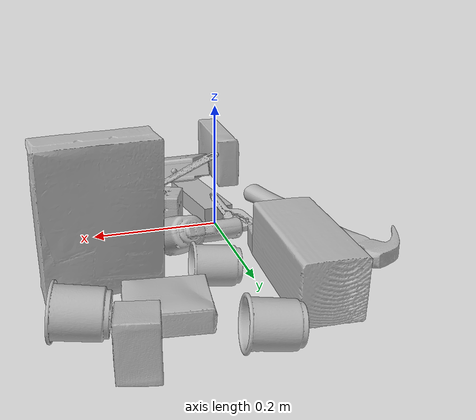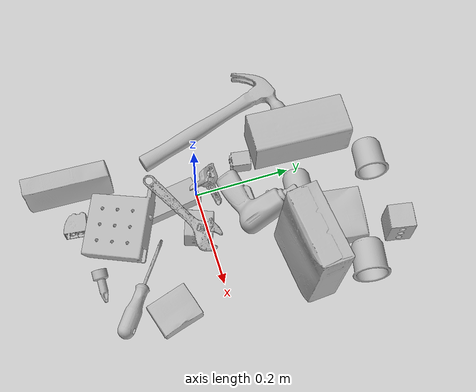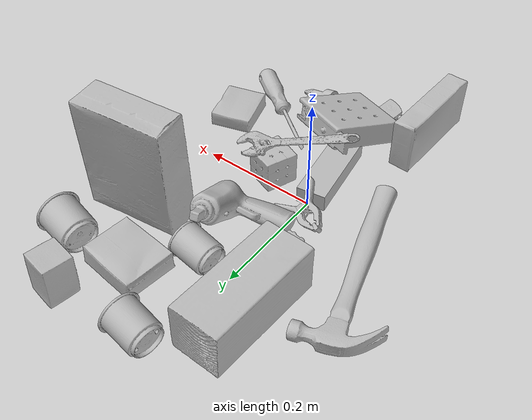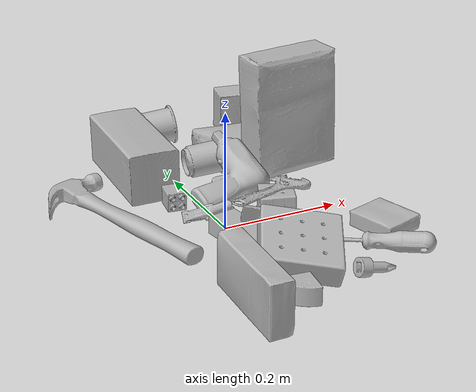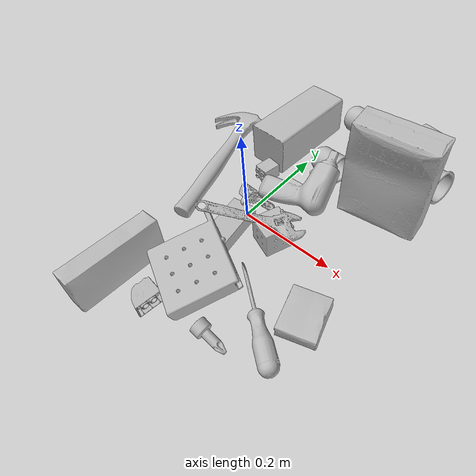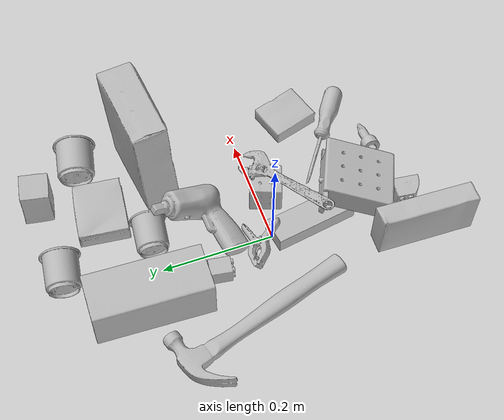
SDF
<sdf version="1.4">
  <world name="default">
    <light name="light1" type="point">
      <pose>0 0 1 0 0 0</pose>
      <diffuse>3 3 3 1</diffuse>
      <specular>3 3 3 1</specular>
    </light>
    <light name="light2" type="point">
      <pose>0 0.5 2 0 0 0</pose>
      <diffuse>1 1 1 1</diffuse>
      <specular>1 1 1 1</specular>
    </light>
    <light name="light3" type="point">
      <pose>0 0.5 2 0 0 0</pose>
      <diffuse>3 3 3 1</diffuse>
      <specular>3 3 3 1</specular>
    </light>
    <scene>
      <ambient>0.7 0.7 0.7</ambient>
    </scene>
    <model name="box21">
      <link name="link_box21">
        <collision name="default">
          <geometry>
            <mesh>
              <uri>model://cracker_box/collision_meshes/collision.obj</uri>
              <scale>1.0 1.0 1.0</scale>
            </mesh>
          </geometry>
          <surface>
            <friction>
              <ode>
                <mu>0.5</mu>
                <mu2>0.5</mu2>
              </ode>
            </friction>
          <contact>
        <ode>
            <max_vel>0</max_vel>
            <min_depth>0.0001</min_depth>
            <kp>1e8</kp>
        </ode>
    </contact></surface>
        </collision>
        <visual name="default">
          <geometry>
            <mesh>
              <uri>model://cracker_box/visual_meshes/visual.dae</uri>
              <scale>1.0 1.0 1.0</scale>
            </mesh>
          </geometry>
        </visual>
        <inertial>
          <mass>2.732837677001953</mass>
          <pose>0.000946416228543967 0.0002543424488976598 -0.0017029533628374338 -0.00031620734042352985 -0.011106490532052917 0.002546795466230165</pose>
          <inertia>
            <ixx>0.0069511193</ixx>
            <iyy>0.011477663</iyy>
            <izz>0.01637968</izz>
            <ixy>0</ixy>
            <ixz>0</ixz>
            <iyz>0</iyz>
          </inertia>
        </inertial>
      </link>
      <pose>0.2058374136686325 0.16961082816123962 0.10730641335248947 -0.04244022241822619 1.5294940095345446 -1.5026427245464777</pose>
    </model>
    <model name="box22">
      <link name="link_box22">
        <collision name="default">
          <geometry>
            <mesh>
              <uri>model://jenga/collision_meshes/collision.obj</uri>
              <scale>1.0 1.0 1.0</scale>
            </mesh>
          </geometry>
          <surface>
            <friction>
              <ode>
                <mu>0.5</mu>
                <mu2>0.5</mu2>
              </ode>
            </friction>
          <contact>
        <ode>
            <max_vel>0</max_vel>
            <min_depth>0.0001</min_depth>
            <kp>1e8</kp>
        </ode>
    </contact></surface>
        </collision>
        <visual name="default">
          <geometry>
            <mesh>
              <uri>model://jenga/visual_meshes/visual.dae</uri>
              <scale>1.0 1.0 1.0</scale>
            </mesh>
          </geometry>
        </visual>
        <inertial>
          <mass>0.1563216596841812</mass>
          <pose>-2.502855807051674e-07 -0.00010250010382151231 -4.0923401684267446e-05 0.0 -7.34215461761844e-07 0.0</pose>
          <inertia>
            <ixx>4.3258e-05</ixx>
            <iyy>0.000293115</iyy>
            <izz>0.0003129252</izz>
            <ixy>0</ixy>
            <ixz>0</ixz>
            <iyz>0</iyz>
          </inertia>
        </inertial>
      </link>
      <pose>0.005556359887123108 -0.07281780242919922 0.015015054494142532 -3.1410878766373314 -3.549693735866579e-05 1.727374219167185</pose>
    </model>
    <model name="box23">
      <link name="link_box23">
        <collision name="default">
          <geometry>
            <mesh>
              <uri>model://pudding_box/collision_meshes/collision.obj</uri>
              <scale>1.0 1.0 1.0</scale>
            </mesh>
          </geometry>
          <surface>
            <friction>
              <ode>
                <mu>0.5</mu>
                <mu2>0.5</mu2>
              </ode>
            </friction>
          <contact>
        <ode>
            <max_vel>0</max_vel>
            <min_depth>0.0001</min_depth>
            <kp>1e8</kp>
        </ode>
    </contact></surface>
        </collision>
        <visual name="default">
          <geometry>
            <mesh>
              <uri>model://pudding_box/visual_meshes/visual.dae</uri>
              <scale>1.0 1.0 1.0</scale>
            </mesh>
          </geometry>
        </visual>
        <inertial>
          <mass>0.32993465662002563</mass>
          <pose>0.0004894821904599667 0.0008067885064519942 -0.0005188827635720372 0.005213102236317791 -0.0066038015122011 0.020079823288174207</pose>
          <inertia>
            <ixx>0.00037297411</ixx>
            <iyy>0.00025093966</iyy>
            <izz>0.0005507938</izz>
            <ixy>0</ixy>
            <ixz>0</ixz>
            <iyz>0</iyz>
          </inertia>
        </inertial>
      </link>
      <pose>0.1385669708251953 0.27018508315086365 0.018686017021536827 -3.141589934810413 1.1094297939773677e-05 1.444491778112607</pose>
    </model>
    <model name="cup1">
      <link name="link_cup1">
        <collision name="default">
          <geometry>
            <mesh>
              <uri>model://c_cups/collision_meshes/collision.obj</uri>
              <scale>1.0 1.0 1.0</scale>
            </mesh>
          </geometry>
          <surface>
            <friction>
              <ode>
                <mu>0.5</mu>
                <mu2>0.5</mu2>
              </ode>
            </friction>
          <contact>
        <ode>
            <max_vel>0</max_vel>
            <min_depth>0.0001</min_depth>
            <kp>1e8</kp>
        </ode>
    </contact></surface>
        </collision>
        <visual name="default">
          <geometry>
            <mesh>
              <uri>model://c_cups/visual_meshes/visual.dae</uri>
              <scale>1.0 1.0 1.0</scale>
            </mesh>
          </geometry>
        </visual>
        <inertial>
          <mass>0.05159630998969078</mass>
          <pose>0.0007237254758365452 0.0020153908990323544 -0.001275097718462348 0.3021575981944983 0.01346171900925468 -0.08771841488334552</pose>
          <inertia>
            <ixx>3.8371487e-05</ixx>
            <iyy>3.7693397e-05</iyy>
            <izz>3.3934528e-05</izz>
            <ixy>0</ixy>
            <ixz>0</ixz>
            <iyz>0</iyz>
          </inertia>
        </inertial>
      </link>
      <pose>0.057090528309345245 0.20271645486354828 0.03017953410744667 -1.4637062225082265 0.7829890317178927 -1.6155408354063279</pose>
    </model>
    <model name="cup2">
      <link name="link_cup2">
        <collision name="default">
          <geometry>
            <mesh>
              <uri>model://d_cups/collision_meshes/collision.obj</uri>
              <scale>1.0 1.0 1.0</scale>
            </mesh>
          </geometry>
          <surface>
            <friction>
              <ode>
                <mu>0.5</mu>
                <mu2>0.5</mu2>
              </ode>
            </friction>
          <contact>
        <ode>
            <max_vel>0</max_vel>
            <min_depth>0.0001</min_depth>
            <kp>1e8</kp>
        </ode>
    </contact></surface>
        </collision>
        <visual name="default">
          <geometry>
            <mesh>
              <uri>model://d_cups/visual_meshes/visual.dae</uri>
              <scale>1.0 1.0 1.0</scale>
            </mesh>
          </geometry>
        </visual>
        <inertial>
          <mass>0.029099034145474434</mass>
          <pose>0.0008068051538430154 0.0019117402844130993 -0.0022666510194540024 0.24013101341738077 -0.2470893725106806 0.5942204262094062</pose>
          <inertia>
            <ixx>2.436274e-05</ixx>
            <iyy>2.429223e-05</iyy>
            <izz>2.2052422e-05</izz>
            <ixy>0</ixy>
            <ixz>0</ixz>
            <iyz>0</iyz>
          </inertia>
        </inertial>
      </link>
      <pose>0.03516745567321777 0.36535167694091797 0.03227335587143898 1.430086058028446 0.7956924962402011 1.3196543578412077</pose>
    </model>
    <model name="box11">
      <link name="link_box11">
        <collision name="default">
          <geometry>
            <mesh>
              <uri>model://sugar_box/collision_meshes/collision.obj</uri>
              <scale>1.0 1.0 1.0</scale>
            </mesh>
          </geometry>
          <surface>
            <friction>
              <ode>
                <mu>0.5</mu>
                <mu2>0.5</mu2>
              </ode>
            </friction>
          <contact>
        <ode>
            <max_vel>0</max_vel>
            <min_depth>0.0001</min_depth>
            <kp>1e8</kp>
        </ode>
    </contact></surface>
        </collision>
        <visual name="default">
          <geometry>
            <mesh>
              <uri>model://sugar_box/visual_meshes/visual.dae</uri>
              <scale>1.0 1.0 1.0</scale>
            </mesh>
          </geometry>
        </visual>
        <inertial>
          <mass>0.6083751916885376</mass>
          <pose>0.0010343727190047503 3.849109634757042e-05 -0.00036364805418998003 -0.00040462662026216373 0.00105066363904409 0.002615379021562279</pose>
          <inertia>
            <ixx>0.0005068966</ixx>
            <iyy>0.0016383935</iyy>
            <izz>0.0019613528</izz>
            <ixy>0</ixy>
            <ixz>0</ixz>
            <iyz>0</iyz>
          </inertia>
        </inertial>
      </link>
      <pose>-0.07610290497541428 -0.2501765787601471 0.04645010083913803 1.5710197310209564 -3.994608296718072e-05 1.5385524998451177</pose>
    </model>
    <model name="box12">
      <link name="link_box12">
        <collision name="default">
          <geometry>
            <mesh>
              <uri>model://wood_block/collision_meshes/collision.obj</uri>
              <scale>1.0 1.0 1.0</scale>
            </mesh>
          </geometry>
          <surface>
            <friction>
              <ode>
                <mu>0.5</mu>
                <mu2>0.5</mu2>
              </ode>
            </friction>
          <contact>
        <ode>
            <max_vel>0</max_vel>
            <min_depth>0.0001</min_depth>
            <kp>1e8</kp>
        </ode>
    </contact></surface>
        </collision>
        <visual name="default">
          <geometry>
            <mesh>
              <uri>model://wood_block/visual_meshes/visual.dae</uri>
              <scale>1.0 1.0 1.0</scale>
            </mesh>
          </geometry>
        </visual>
        <inertial>
          <mass>1.904224157333374</mass>
          <pose>-5.813315510749817e-06 -0.000570809468626976 0.0002640858292579651 -0.05220878944738684 -0.005192694452018099 -0.006861378422653873</pose>
          <inertia>
            <ixx>0.00254814</ixx>
            <iyy>0.008049577</iyy>
            <izz>0.008019466</izz>
            <ixy>0</ixy>
            <ixz>0</ixz>
            <iyz>0</iyz>
          </inertia>
        </inertial>
      </link>
      <pose>-0.05832558870315552 0.23959264159202576 0.0452585332095623 -0.005208389454179391 0.0057187171556873275 1.5304921634547985</pose>
    </model>
    <model name="box13">
      <link name="link_box13">
        <collision name="default">
          <geometry>
            <mesh>
              <uri>model://gelatin_box/collision_meshes/collision.obj</uri>
              <scale>1.0 1.0 1.0</scale>
            </mesh>
          </geometry>
          <surface>
            <friction>
              <ode>
                <mu>0.5</mu>
                <mu2>0.5</mu2>
              </ode>
            </friction>
          <contact>
        <ode>
            <max_vel>0</max_vel>
            <min_depth>0.0001</min_depth>
            <kp>1e8</kp>
        </ode>
    </contact></surface>
        </collision>
        <visual name="default">
          <geometry>
            <mesh>
              <uri>model://gelatin_box/visual_meshes/visual.dae</uri>
              <scale>1.0 1.0 1.0</scale>
            </mesh>
          </geometry>
        </visual>
        <inertial>
          <mass>0.15982484817504883</mass>
          <pose>0.0004319618456065655 0.00011156871187267825 -0.0003640321083366871 -0.001050372093012012 -0.00475581868936722 0.016440559471878533</pose>
          <inertia>
            <ixx>0.000112823305</ixx>
            <iyy>8.0589096e-05</iyy>
            <izz>0.0001717422</izz>
            <ixy>0</ixy>
            <ixz>0</ixz>
            <iyz>0</iyz>
          </inertia>
        </inertial>
      </link>
      <pose>0.22984659671783447 -0.11092997342348099 0.015168312937021255 0.005597500414590639 -0.007304577620816254 0.28461924857505844</pose>
    </model>
    <model name="box14">
      <link name="link_box14">
        <collision name="default">
          <geometry>
            <mesh>
              <uri>model://rubiks_cube/collision_meshes/collision.obj</uri>
              <scale>1.0 1.0 1.0</scale>
            </mesh>
          </geometry>
          <surface>
            <friction>
              <ode>
                <mu>0.5</mu>
                <mu2>0.5</mu2>
              </ode>
            </friction>
          <contact>
        <ode>
            <max_vel>0</max_vel>
            <min_depth>0.0001</min_depth>
            <kp>1e8</kp>
        </ode>
    </contact></surface>
        </collision>
        <visual name="default">
          <geometry>
            <mesh>
              <uri>model://rubiks_cube/visual_meshes/visual.dae</uri>
              <scale>1.0 1.0 1.0</scale>
            </mesh>
          </geometry>
        </visual>
        <inertial>
          <mass>0.19606205821037292</mass>
          <pose>2.6721043468569405e-05 5.256967051536776e-05 -7.264316536748083e-06 -0.05467227514375443 -0.09814085307594407 -0.03445353526761094</pose>
          <inertia>
            <ixx>0.00010833746</ixx>
            <iyy>0.000107832224</iyy>
            <izz>0.00010923522</izz>
            <ixy>0</ixy>
            <ixz>0</ixz>
            <iyz>0</iyz>
          </inertia>
        </inertial>
      </link>
      <pose>0.08302915096282959 -0.017736254259943962 0.029330097138881683 1.5776035661612078 -0.016678269890736702 2.786039688046581</pose>
    </model>
    <model name="cup15">
      <link name="link_cup15">
        <collision name="default">
          <geometry>
            <mesh>
              <uri>model://e_cups/collision_meshes/collision.obj</uri>
              <scale>1.0 1.0 1.0</scale>
            </mesh>
          </geometry>
          <surface>
            <friction>
              <ode>
                <mu>0.5</mu>
                <mu2>0.5</mu2>
              </ode>
            </friction>
          <contact>
        <ode>
            <max_vel>0</max_vel>
            <min_depth>0.0001</min_depth>
            <kp>1e8</kp>
        </ode>
    </contact></surface>
        </collision>
        <visual name="default">
          <geometry>
            <mesh>
              <uri>model://e_cups/visual_meshes/visual.dae</uri>
              <scale>1.0 1.0 1.0</scale>
            </mesh>
          </geometry>
        </visual>
        <inertial>
          <mass>0.09305236488580704</mass>
          <pose>0.0011355740716680884 0.0028797851409763098 -0.003882972989231348 0.6952374393777071 0.08767548394821409 -0.5235242886817723</pose>
          <inertia>
            <ixx>8.204892e-05</ixx>
            <iyy>8.5752865e-05</iyy>
            <izz>7.844823e-05</izz>
            <ixy>0</ixy>
            <ixz>0</ixz>
            <iyz>0</iyz>
          </inertia>
        </inertial>
      </link>
      <pose>0.24500402808189392 0.2856978476047516 0.0349855050444603 1.4706117219102293 -0.408914210325675 1.4044331681926119</pose>
    </model>
    <model name="toy1">
      <link name="link_toy1">
        <collision name="default">
          <geometry>
            <mesh>
              <uri>model://foam_brick/collision_meshes/collision.obj</uri>
              <scale>1.0 1.0 1.0</scale>
            </mesh>
          </geometry>
          <surface>
            <friction>
              <ode>
                <mu>0.5</mu>
                <mu2>0.5</mu2>
              </ode>
            </friction>
          <contact>
        <ode>
            <max_vel>0</max_vel>
            <min_depth>0.0001</min_depth>
            <kp>1e8</kp>
        </ode>
    </contact></surface>
        </collision>
        <visual name="default">
          <geometry>
            <mesh>
              <uri>model://foam_brick/visual_meshes/visual.dae</uri>
              <scale>1.0 1.0 1.0</scale>
            </mesh>
          </geometry>
        </visual>
        <inertial>
          <mass>0.27397871017456055</mass>
          <pose>-0.0002522472059354186 0.0003458441060502082 -0.00025321010616607964 -0.2940210021807357 0.01727444677850634 -0.0007449878009638903</pose>
          <inertia>
            <ixx>0.00011967903</ixx>
            <iyy>0.00019107372</iyy>
            <izz>0.00019350204</izz>
            <ixy>0</ixy>
            <ixz>0</ixz>
            <iyz>0</iyz>
          </inertia>
        </inertial>
      </link>
      <pose>0.19097687304019928 0.369099497795105 0.03830829635262489 2.011323833102228 1.552183946386246 1.820690703176565</pose>
    </model>
    <model name="toy2">
      <link name="link_toy2">
        <collision name="default">
          <geometry>
            <mesh>
              <uri>model://b_toy_airplane/collision_meshes/collision.obj</uri>
              <scale>1.0 1.0 1.0</scale>
            </mesh>
          </geometry>
          <surface>
            <friction>
              <ode>
                <mu>0.5</mu>
                <mu2>0.5</mu2>
              </ode>
            </friction>
          <contact>
        <ode>
            <max_vel>0</max_vel>
            <min_depth>0.0001</min_depth>
            <kp>1e8</kp>
        </ode>
    </contact></surface>
        </collision>
        <visual name="default">
          <geometry>
            <mesh>
              <uri>model://b_toy_airplane/visual_meshes/visual.dae</uri>
              <scale>1.0 1.0 1.0</scale>
            </mesh>
          </geometry>
        </visual>
        <inertial>
          <mass>0.24932990968227386</mass>
          <pose>0.005081362556666136 0.004015582613646984 0.00954306498169899 -0.04001809188182278 -0.04022184417958596 -0.5601502893643007</pose>
          <inertia>
            <ixx>0.0004628856</ixx>
            <iyy>0.00018501986</iyy>
            <izz>0.00057587575</izz>
            <ixy>0</ixy>
            <ixz>0</ixz>
            <iyz>0</iyz>
          </inertia>
        </inertial>
      </link>
      <pose>0.06618702411651611 0.09590940922498703 0.042827680706977844 3.121171145145467 -0.48957446922719994 1.7926454263542537</pose>
    </model>
    <model name="toy3">
      <link name="link_toy3">
        <collision name="default">
          <geometry>
            <mesh>
              <uri>model://f_lego_duplo/collision_meshes/collision.obj</uri>
              <scale>1.0 1.0 1.0</scale>
            </mesh>
          </geometry>
          <surface>
            <friction>
              <ode>
                <mu>0.5</mu>
                <mu2>0.5</mu2>
              </ode>
            </friction>
          <contact>
        <ode>
            <max_vel>0</max_vel>
            <min_depth>0.0001</min_depth>
            <kp>1e8</kp>
        </ode>
    </contact></surface>
        </collision>
        <visual name="default">
          <geometry>
            <mesh>
              <uri>model://f_lego_duplo/visual_meshes/visual.dae</uri>
              <scale>1.0 1.0 1.0</scale>
            </mesh>
          </geometry>
        </visual>
        <inertial>
          <mass>0.027739444747567177</mass>
          <pose>2.369416324654594e-05 0.00013393194240052253 0.0018837876850739121 0.02983859902212722 -0.014425048030447486 -0.6756637170693943</pose>
          <inertia>
            <ixx>5.8614983e-06</ixx>
            <iyy>5.913718e-06</iyy>
            <izz>5.0880294e-06</izz>
            <ixy>0</ixy>
            <ixz>0</ixz>
            <iyz>0</iyz>
          </inertia>
        </inertial>
      </link>
      <pose>-0.04086955264210701 0.10784398764371872 0.01650199666619301 -1.5707937940843701 1.7949122000101656e-06 2.9899546613699948</pose>
    </model>
    <model name="toy4">
      <link name="link_toy4">
        <collision name="default">
          <geometry>
            <mesh>
              <uri>model://d_toy_airplane/collision_meshes/collision.obj</uri>
              <scale>1.0 1.0 1.0</scale>
            </mesh>
          </geometry>
          <surface>
            <friction>
              <ode>
                <mu>0.5</mu>
                <mu2>0.5</mu2>
              </ode>
            </friction>
          <contact>
        <ode>
            <max_vel>0</max_vel>
            <min_depth>0.0001</min_depth>
            <kp>1e8</kp>
        </ode>
    </contact></surface>
        </collision>
        <visual name="default">
          <geometry>
            <mesh>
              <uri>model://d_toy_airplane/visual_meshes/visual.dae</uri>
              <scale>1.0 1.0 1.0</scale>
            </mesh>
          </geometry>
        </visual>
        <inertial>
          <mass>0.018694162368774414</mass>
          <pose>9.410315396962687e-05 -5.80932610318996e-05 -0.011728095822036266 0.0002670379770250361 0.004678992469792915 0.5194762078456472</pose>
          <inertia>
            <ixx>5.6041463e-06</ixx>
            <iyy>5.6083722e-06</iyy>
            <izz>1.6919282e-06</izz>
            <ixy>0</ixy>
            <ixz>0</ixz>
            <iyz>0</iyz>
          </inertia>
        </inertial>
      </link>
      <pose>0.13803373277187347 -0.23412467539310455 0.011361321434378624 -2.3017661327784933 1.2476116278422775 -2.3032404704557554</pose>
    </model>
    <model name="toy5">
      <link name="link_toy5">
        <collision name="default">
          <geometry>
            <mesh>
              <uri>model://d_lego_duplo/collision_meshes/collision.obj</uri>
              <scale>1.0 1.0 1.0</scale>
            </mesh>
          </geometry>
          <surface>
            <friction>
              <ode>
                <mu>0.5</mu>
                <mu2>0.5</mu2>
              </ode>
            </friction>
          <contact>
        <ode>
            <max_vel>0</max_vel>
            <min_depth>0.0001</min_depth>
            <kp>1e8</kp>
        </ode>
    </contact></surface>
        </collision>
        <visual name="default">
          <geometry>
            <mesh>
              <uri>model://d_lego_duplo/visual_meshes/visual.dae</uri>
              <scale>1.0 1.0 1.0</scale>
            </mesh>
          </geometry>
        </visual>
        <inertial>
          <mass>0.04560890793800354</mass>
          <pose>0.0028305635787546635 0.00016366137424483895 0.0008589806966483593 0.08010848326521293 -0.38355231288211744 0.0010296590748680565</pose>
          <inertia>
            <ixx>8.829212e-06</ixx>
            <iyy>1.253105e-05</iyy>
            <izz>1.2084434e-05</izz>
            <ixy>0</ixy>
            <ixz>0</ixz>
            <iyz>0</iyz>
          </inertia>
        </inertial>
      </link>
      <pose>-0.0015022067818790674 -0.2554152011871338 0.016381364315748215 -1.5708590432381686 -0.008071069618538894 1.4528936411745073</pose>
    </model>
    <model name="toy6">
      <link name="link_toy6">
        <collision name="default">
          <geometry>
            <mesh>
              <uri>model://nine_hole_peg_test/collision_meshes/collision.obj</uri>
              <scale>1.0 1.0 1.0</scale>
            </mesh>
          </geometry>
          <surface>
            <friction>
              <ode>
                <mu>0.5</mu>
                <mu2>0.5</mu2>
              </ode>
            </friction>
          <contact>
        <ode>
            <max_vel>0</max_vel>
            <min_depth>0.0001</min_depth>
            <kp>1e8</kp>
        </ode>
    </contact></surface>
        </collision>
        <visual name="default">
          <geometry>
            <mesh>
              <uri>model://nine_hole_peg_test/visual_meshes/visual.dae</uri>
              <scale>1.0 1.0 1.0</scale>
            </mesh>
          </geometry>
        </visual>
        <inertial>
          <mass>0.9848376512527466</mass>
          <pose>-0.004617386031895876 -0.009647614322602749 2.646068787726108e-05 -0.0014666785927196467 0.0007194180015025765 -0.6342414580933873</pose>
          <inertia>
            <ixx>0.0015399556</ixx>
            <iyy>0.0014378404</iyy>
            <izz>0.0026984566</izz>
            <ixy>0</ixy>
            <ixz>0</ixz>
            <iyz>0</iyz>
          </inertia>
        </inertial>
      </link>
      <pose>0.03287387266755104 -0.1641278713941574 0.0455692857503891 0.1670070922760679 -0.22926687872982612 1.0969487456403781</pose>
    </model>
    <model name="hardware1">
      <link name="link_hardware1">
        <collision name="default">
          <geometry>
            <mesh>
              <uri>model://hammer/collision_meshes/collision.obj</uri>
              <scale>1.0 1.0 1.0</scale>
            </mesh>
          </geometry>
          <surface>
            <friction>
              <ode>
                <mu>0.5</mu>
                <mu2>0.5</mu2>
              </ode>
            </friction>
          <contact>
        <ode>
            <max_vel>0</max_vel>
            <min_depth>0.0001</min_depth>
            <kp>1e8</kp>
        </ode>
    </contact></surface>
        </collision>
        <visual name="default">
          <geometry>
            <mesh>
              <uri>model://hammer/visual_meshes/visual.dae</uri>
              <scale>1.0 1.0 1.0</scale>
            </mesh>
          </geometry>
        </visual>
        <inertial>
          <mass>0.19812075793743134</mass>
          <pose>0.009415780194103718 -0.011892358772456646 -0.00012350631004665047 0.023155553199567438 -0.004792165144826806 -0.012760319769687977</pose>
          <inertia>
            <ixx>8.4865314e-05</ixx>
            <iyy>0.0022996028</iyy>
            <izz>0.0023654876</izz>
            <ixy>0</ixy>
            <ixz>0</ixz>
            <iyz>0</iyz>
          </inertia>
        </inertial>
      </link>
      <pose>-0.15783190727233887 0.07671910524368286 0.016267376020550728 -0.005199143197966515 -0.0013802366924719205 1.8730930805073596</pose>
    </model>
    <model name="hardware2">
      <link name="link_hardware2">
        <collision name="default">
          <geometry>
            <mesh>
              <uri>model://medium_clamp/collision_meshes/collision.obj</uri>
              <scale>1.0 1.0 1.0</scale>
            </mesh>
          </geometry>
          <surface>
            <friction>
              <ode>
                <mu>0.5</mu>
                <mu2>0.5</mu2>
              </ode>
            </friction>
          <contact>
        <ode>
            <max_vel>0</max_vel>
            <min_depth>0.0001</min_depth>
            <kp>1e8</kp>
        </ode>
    </contact></surface>
        </collision>
        <visual name="default">
          <geometry>
            <mesh>
              <uri>model://medium_clamp/visual_meshes/visual.dae</uri>
              <scale>1.0 1.0 1.0</scale>
            </mesh>
          </geometry>
        </visual>
        <inertial>
          <mass>0.022759946063160896</mass>
          <pose>0.005390991922467947 0.00039532387745566666 -0.0001222159044118598 -0.0012269199415174078 0.0025845019151957355 0.03820777718195871</pose>
          <inertia>
            <ixx>6.200628e-06</ixx>
            <iyy>9.023669e-06</iyy>
            <izz>1.3899154e-05</izz>
            <ixy>0</ixy>
            <ixz>0</ixz>
            <iyz>0</iyz>
          </inertia>
        </inertial>
      </link>
      <pose>-0.013163525611162186 0.029202302917838097 0.01969880238175392 0.6027371419147184 0.21068543859087716 2.725853675342059</pose>
    </model>
    <model name="hardware3">
      <link name="link_hardware3">
        <collision name="default">
          <geometry>
            <mesh>
              <uri>model://flat_screwdriver/collision_meshes/collision.obj</uri>
              <scale>1.0 1.0 1.0</scale>
            </mesh>
          </geometry>
          <surface>
            <friction>
              <ode>
                <mu>0.5</mu>
                <mu2>0.5</mu2>
              </ode>
            </friction>
          <contact>
        <ode>
            <max_vel>0</max_vel>
            <min_depth>0.0001</min_depth>
            <kp>1e8</kp>
        </ode>
    </contact></surface>
        </collision>
        <visual name="default">
          <geometry>
            <mesh>
              <uri>model://flat_screwdriver/visual_meshes/visual.dae</uri>
              <scale>1.0 1.0 1.0</scale>
            </mesh>
          </geometry>
        </visual>
        <inertial>
          <mass>0.09131896495819092</mass>
          <pose>-0.0489187091588974 -0.0006576800951734185 -0.0006140916375443339 -0.5615616021105532 -0.003233725851923771 0.0069822762955213</pose>
          <inertia>
            <ixx>1.0789267e-05</ixx>
            <iyy>0.00013697217</iyy>
            <izz>0.00013690875</izz>
            <ixy>0</ixy>
            <ixz>0</ixz>
            <iyz>0</iyz>
          </inertia>
        </inertial>
      </link>
      <pose>0.16741852462291718 -0.15950901806354523 0.01539487112313509 1.0492865570890058 0.05207081010289739 2.5236410709680612</pose>
    </model>
    <model name="hardware4">
      <link name="link_hardware4">
        <collision name="default">
          <geometry>
            <mesh>
              <uri>model://adjustable_wrench/collision_meshes/collision.obj</uri>
              <scale>1.0 1.0 1.0</scale>
            </mesh>
          </geometry>
          <surface>
            <friction>
              <ode>
                <mu>0.5</mu>
                <mu2>0.5</mu2>
              </ode>
            </friction>
          <contact>
        <ode>
            <max_vel>0</max_vel>
            <min_depth>0.0001</min_depth>
            <kp>1e8</kp>
        </ode>
    </contact></surface>
        </collision>
        <visual name="default">
          <geometry>
            <mesh>
              <uri>model://adjustable_wrench/visual_meshes/visual.dae</uri>
              <scale>1.0 1.0 1.0</scale>
            </mesh>
          </geometry>
        </visual>
        <inertial>
          <mass>0.023054517805576324</mass>
          <pose>0.03740980476140976 -0.0028968877159059048 -0.0011149226920679212 -0.01447335734168526 0.006656027895675122 -0.010954173130845575</pose>
          <inertia>
            <ixx>4.7184403e-06</ixx>
            <iyy>5.5223813e-05</iyy>
            <izz>5.969163e-05</izz>
            <ixy>0</ixy>
            <ixz>0</ixz>
            <iyz>0</iyz>
          </inertia>
        </inertial>
      </link>
      <pose>0.05703800171613693 -0.04037591069936752 0.07473960518836975 0.04059940555103684 0.16660376340886718 0.522387390750671</pose>
    </model>
  <physics type="ode">
      <max_contacts>50</max_contacts>
      <ode>
        <solver>
          <type>quick</type>
          <iters>75</iters>
        </solver>
        <constraints>
          <contact_max_correcting_vel>0</contact_max_correcting_vel>
          <contact_surface_layer>0</contact_surface_layer>
        </constraints>
      </ode>
    </physics></world>
</sdf>
